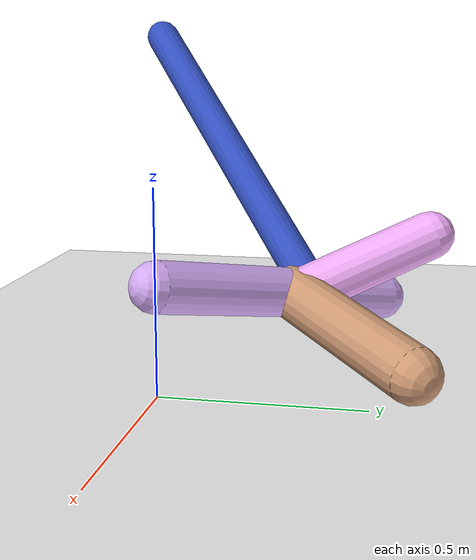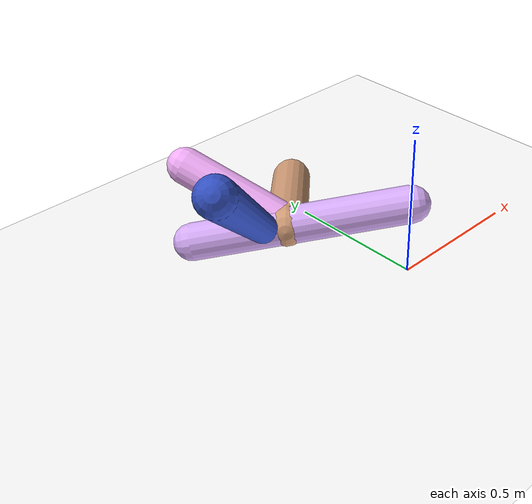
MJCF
<mujoco model="morphology">
  <option timestep="0.01"/>
  <default>
    <default class="/"/>
    <default class="0/"/>
    <default class="0/1/"/>
    <default class="0/2/"/>
    <default class="0/2/3/"/>
  </default>
  <asset>
    <texture name="texplane" type="2d" builtin="checker" rgb1="0.10000000000000001 0.20000000000000001 0.29999999999999999" rgb2="0.20000000000000001 0.29999999999999999 0.40000000000000002" width="300" height="300"/>
    <material name="MatPlane" class="/" texture="texplane" texrepeat="20 20" specular="1" shininess="1" reflectance="0.5"/>
  </asset>
  <worldbody>
    <light name="//unnamed_light_0" class="/" directional="true" pos="0 0 1.5" dir="0 0 -1.3" cutoff="100" exponent="1" diffuse="1 1 1" specular="0.10000000000000001 0.10000000000000001 0.10000000000000001"/>
    <geom name="ground" class="/" type="plane" size="15 15 0.5" material="MatPlane" rgba="1 1 1 1"/>
    <site name="body" class="/" size="9.9999999999999995e-07 9.9999999999999995e-07 9.9999999999999995e-07" pos="0 0 0.26676115989685056"/>
    <body pos="0 0 0.26676115989685056" name="0/">
      <freejoint name="0/"/>
      <geom name="0/geom" class="0/" type="capsule" contype="1" conaffinity="1" condim="3" size="0.063410566806489183" rgba="0.85030135749193225 0.68379571475167689 0.98387559566408778 1" friction="0.59999999999999998 0.10000000000000001 0.10000000000000001" fromto="0 0 0 -0.52083167193636648 0.48563236715805358 -0.13251542798922722"/>
      <site name="0/end0" class="0/" size="0.0050000000000000001" pos="-0.52083167193636648 0.48563236715805358 -0.13251542798922722"/>
      <site name="0/attach1" class="0/" size="9.9999999999999995e-07 9.9999999999999995e-07 9.9999999999999995e-07" pos="-0.34886069715087831 0.32528368625494963 -0.08876077835223696"/>
      <body pos="-0.34886069715087831 0.32528368625494963 -0.08876077835223696" name="0/1/">
        <joint name="0/1/joint/" class="0/" type="hinge" axis="0 1 0" limited="true" range="-46.51892166383886 46.51892166383886"/>
        <geom name="0/1/geom" class="0/1/" type="capsule" contype="1" conaffinity="1" condim="3" size="0.049380924797853977" rgba="0.20631106980622926 0.32354836409816379 0.77506060110287422 1" friction="0.59999999999999998 0.10000000000000001 0.10000000000000001" fromto="0 0 0 -0.61152637317169278 -0.57631617990487483 0.65988513303829599"/>
        <site name="0/1/end1" class="0/1/" size="0.0050000000000000001" pos="-0.61152637317169278 -0.57631617990487483 0.65988513303829599"/>
      </body>
      <site name="0/attach2" class="0/" size="9.9999999999999995e-07 9.9999999999999995e-07 9.9999999999999995e-07" pos="-0.29497191831038544 0.27503686632890872 -0.075049832999556476"/>
      <body pos="-0.29497191831038544 0.27503686632890872 -0.075049832999556476" name="0/2/">
        <joint name="0/2/joint/" class="0/" type="hinge" axis="0 1 0" limited="true" range="-68.239165621200243 68.239165621200243"/>
        <geom name="0/2/geom" class="0/2/" type="capsule" contype="1" conaffinity="1" condim="3" size="0.068692267781368582" rgba="0.82952978089620499 0.61802644916410043 0.46775015174862189 1" friction="0.59999999999999998 0.10000000000000001 0.10000000000000001" fromto="0 0 0 0.31990051091923033 0.32255302502818584 -0.091711321351679809"/>
        <site name="0/2/end2" class="0/2/" size="0.0050000000000000001" pos="0.31990051091923033 0.32255302502818584 -0.091711321351679809"/>
        <site name="0/2/attach3" class="0/2/" size="9.9999999999999995e-07 9.9999999999999995e-07 9.9999999999999995e-07" pos="0.012008227759934643 0.012107796195962616 -0.0034426029261128191"/>
        <body pos="0.012008227759934643 0.012107796195962616 -0.0034426029261128191" name="0/2/3/">
          <joint name="0/2/3/joint/" class="0/2/" type="hinge" axis="1.3877787807814457e-17 0.27348938706247827 0.96187502055318519" limited="true" range="-69.444151962112755 69.444151962112755"/>
          <geom name="0/2/3/geom" class="0/2/3/" type="capsule" contype="1" conaffinity="1" condim="3" size="0.062636518596000806" rgba="0.96749369919909078 0.69242074997494651 0.99385317077910995 1" friction="0.59999999999999998 0.10000000000000001 0.10000000000000001" fromto="0 0 0 -0.14405376162601868 0.33219875592131398 0.13974363151456926"/>
          <site name="0/2/3/end3" class="0/2/3/" size="0.0050000000000000001" pos="-0.14405376162601868 0.33219875592131398 0.13974363151456926"/>
        </body>
      </body>
      <camera name="0/iso" class="0/" mode="trackcom" pos="-2.2999999999999998 -2.2999999999999998 1" xyaxes="0.45000000000000001 -0.45000000000000001 0 0.29999999999999999 0.14999999999999999 0.93999999999999995"/>
    </body>
  </worldbody>
  <actuator>
    <motor name="0/1/motor" class="0/1/" ctrllimited="true" ctrlrange="-1 1" gear="61" joint="0/1/joint/"/>
    <motor name="0/2/motor" class="0/2/" ctrllimited="true" ctrlrange="-1 1" gear="76" joint="0/2/joint/"/>
    <motor name="0/2/3/motor" class="0/2/3/" ctrllimited="true" ctrlrange="-1 1" gear="87" joint="0/2/3/joint/"/>
  </actuator>
  <sensor>
    <subtreelinvel name="velocity" body="0/"/>
  </sensor>
</mujoco>
